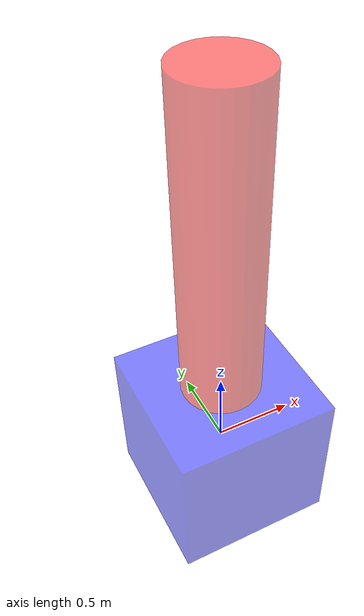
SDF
<?xml version="1.0" encoding="UTF-8"?>
<sdf version='1.9'>
  <model name='payload'>
    <link name="box">
      <gravity>true</gravity>
      <pose>0 0 0 0 0 0</pose>
      <inertial>
        <mass>1.0</mass>
        <inertia>
          <ixx>0.02166666666666667</ixx>
          <ixy>0</ixy>
          <ixz>0</ixz>
          <iyy>0.02166666666666667</iyy>
          <iyz>0</iyz>
          <izz>0.04000000000000001</izz>
        </inertia>
      </inertial>
      <collision name="collision">
        <geometry>
          <box>
            <size>1.0 1.0 1.0</size>
          </box>
        </geometry>
      </collision>
      <visual name="visual">
        <geometry>
          <box>
            <size>1.0 1.0 1.0</size>
          </box>
        </geometry>
        <material>
          <ambient>0.0 0.0 1.0 1</ambient>
          <diffuse>0.0 0.0 1.0 1</diffuse>
          <specular>0.0 0.0 1.0 1</specular>
        </material>
        <transparency>0.5</transparency>
      </visual>
    </link>

    <joint name="string_to_box" type="fixed">
      <parent>string</parent>
      <child>box</child>
      <axis>
        <xyz>0 0 1</xyz>
      </axis>
    </joint>

    <link name="string">
      <gravity>true</gravity>
      <pose relative_to='box'>0 0 1.5 0 0 0</pose>
      <inertial>
        <mass>0.1</mass>
        <inertia>
          <!-- ixx = iyy = (1/12) * m * (3 * r^2 + h^2) -->
          <!-- izz = (1/2) * m * r^2 -->
          <ixx>0.208583333</ixx>
          <ixy>0</ixy>
          <ixz>0</ixz>
          <iyy>0.208583333</iyy>
          <iyz>0</iyz>
          <izz>0.0005</izz>
        </inertia>
      </inertial>
      <collision name="collision">
        <geometry>
          <cylinder>
            <radius>0.2</radius>
            <length>2</length>
          </cylinder>
        </geometry>
      </collision>
      <visual name="visual">
        <geometry>
          <cylinder>
            <radius>0.25</radius>
            <length>2</length>
          </cylinder>
        </geometry>
        <material>
          <ambient>1.0 0.0 0.0 1</ambient>
          <diffuse>1.0 0.0 0.0 1</diffuse>
          <specular>1.0 0.0 0.0 1</specular>
        </material>
        <transparency>0.5</transparency>
      </visual>
    </link>

  </model>
</sdf>
